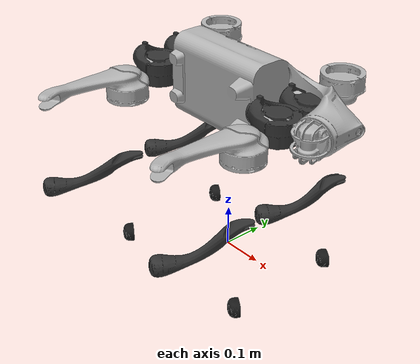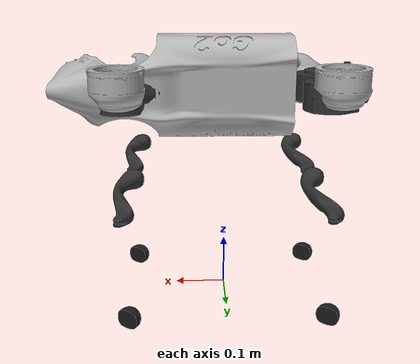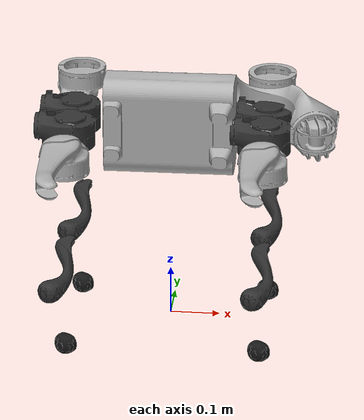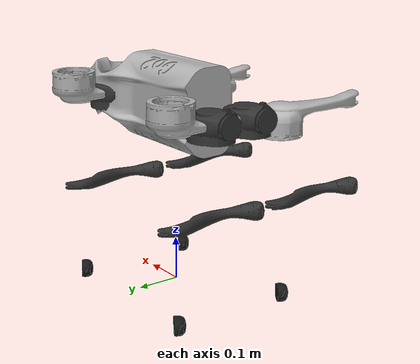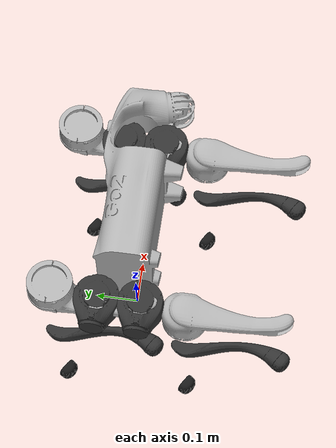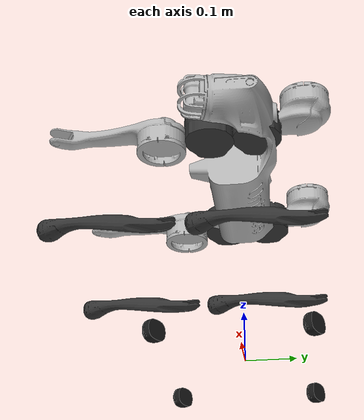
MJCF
<mujoco model="go2">
  <compiler angle="radian" meshdir="meshes/"/>

  <statistic meansize="0.144785" extent="1.23314" center="0.025392 2.0634e-05 -0.245975"/>

  <default>
    <joint damping="0.5" armature="0.01" frictionloss="0.1"/>
    <geom contype="1" conaffinity="1" condim="3"/>
    <site size="0.01" rgba="1 0 0 1" group="4"/>
  </default>

  <asset>
    <mesh name="base" file="base.stl"/>
    <mesh name="hip" file="hip.stl"/>
    <mesh name="thigh" file="thigh.stl"/>
    <mesh name="thigh_mirror" file="thigh_mirror.stl"/>
    <mesh name="calf" file="calf.stl"/>
    <mesh name="calf_mirror" file="calf_mirror.stl"/>
    <mesh name="foot" file="foot.stl"/>
  </asset>

  <worldbody>
    <light directional="true" diffuse=".8 .8 .8" specular=".2 .2 .2" pos="0 0 5" dir="0 0 -1"/>

    <body name="base" pos="0 0 0.42">
      <joint name="floating_base" type="free"/>
      <inertial pos="0 0 0" mass="5.0" diaginertia="0.01 0.01 0.01"/>
      <geom type="mesh" mesh="base" rgba="0.7 0.7 0.7 1"/>

      <site name="imu_site" pos="0 0 0"/>

      <body name="FL_hip" pos="0.1934 0.0465 0">
        <joint name="FL_hip_joint" axis="1 0 0" range="-1.0472 1.0472"/>
        <geom type="mesh" mesh="hip" rgba="0.2 0.2 0.2 1"/>
        <body name="FL_thigh" pos="0 0.0955 0">
          <joint name="FL_thigh_joint" axis="0 1 0" range="-1.5708 3.4907"/>
          <geom type="mesh" mesh="thigh" rgba="0.7 0.7 0.7 1"/>
          <body name="FL_calf" pos="0 0 -0.213">
            <joint name="FL_calf_joint" axis="0 1 0" range="-2.7227 -0.83776"/>
            <geom type="mesh" mesh="calf" rgba="0.2 0.2 0.2 1"/>
            <body name="FL_foot" pos="0 0 -0.213">
                <geom type="mesh" mesh="foot" rgba="0.1 0.1 0.1 1"/>
                <site name="FL_foot_site" pos="0 0 0"/>
            </body>
          </body>
        </body>
      </body>

      <body name="FR_hip" pos="0.1934 -0.0465 0">
        <joint name="FR_hip_joint" axis="1 0 0" range="-1.0472 1.0472"/>
        <geom type="mesh" mesh="hip" rgba="0.2 0.2 0.2 1"/>
        <body name="FR_thigh" pos="0 -0.0955 0">
          <joint name="FR_thigh_joint" axis="0 1 0" range="-1.5708 3.4907"/>
          <geom type="mesh" mesh="thigh_mirror" rgba="0.7 0.7 0.7 1"/>
          <body name="FR_calf" pos="0 0 -0.213">
            <joint name="FR_calf_joint" axis="0 1 0" range="-2.7227 -0.83776"/>
            <geom type="mesh" mesh="calf_mirror" rgba="0.2 0.2 0.2 1"/>
            <body name="FR_foot" pos="0 0 -0.213">
                <geom type="mesh" mesh="foot" rgba="0.1 0.1 0.1 1"/>
                <site name="FR_foot_site" pos="0 0 0"/>
            </body>
          </body>
        </body>
      </body>

      <body name="RL_hip" pos="-0.1934 0.0465 0">
        <joint name="RL_hip_joint" axis="1 0 0" range="-1.0472 1.0472"/>
        <geom type="mesh" mesh="hip" rgba="0.2 0.2 0.2 1"/>
        <body name="RL_thigh" pos="0 0.0955 0">
          <joint name="RL_thigh_joint" axis="0 1 0" range="-0.5236 4.5379"/>
          <geom type="mesh" mesh="thigh" rgba="0.7 0.7 0.7 1"/>
          <body name="RL_calf" pos="0 0 -0.213">
            <joint name="RL_calf_joint" axis="0 1 0" range="-2.7227 -0.83776"/>
            <geom type="mesh" mesh="calf" rgba="0.2 0.2 0.2 1"/>
            <body name="RL_foot" pos="0 0 -0.213">
                <geom type="mesh" mesh="foot" rgba="0.1 0.1 0.1 1"/>
                <site name="RL_foot_site" pos="0 0 0"/>
            </body>
          </body>
        </body>
      </body>

      <body name="RR_hip" pos="-0.1934 -0.0465 0">
        <joint name="RR_hip_joint" axis="1 0 0" range="-1.0472 1.0472"/>
        <geom type="mesh" mesh="hip" rgba="0.2 0.2 0.2 1"/>
        <body name="RR_thigh" pos="0 -0.0955 0">
          <joint name="RR_thigh_joint" axis="0 1 0" range="-0.5236 4.5379"/>
          <geom type="mesh" mesh="thigh_mirror" rgba="0.7 0.7 0.7 1"/>
          <body name="RR_calf" pos="0 0 -0.213">
            <joint name="RR_calf_joint" axis="0 1 0" range="-2.7227 -0.83776"/>
            <geom type="mesh" mesh="calf_mirror" rgba="0.2 0.2 0.2 1"/>
            <body name="RR_foot" pos="0 0 -0.213">
                <geom type="mesh" mesh="foot" rgba="0.1 0.1 0.1 1"/>
                <site name="RR_foot_site" pos="0 0 0"/>
            </body>
          </body>
        </body>
      </body>
    </body>
  </worldbody>

  <actuator>
    <motor name="FL_hip_motor" joint="FL_hip_joint" ctrlrange="-23.7 23.7"/>
    <motor name="FL_thigh_motor" joint="FL_thigh_joint" ctrlrange="-23.7 23.7"/>
    <motor name="FL_calf_motor" joint="FL_calf_joint" ctrlrange="-45.43 45.43"/>

    <motor name="FR_hip_motor" joint="FR_hip_joint" ctrlrange="-23.7 23.7"/>
    <motor name="FR_thigh_motor" joint="FR_thigh_joint" ctrlrange="-23.7 23.7"/>
    <motor name="FR_calf_motor" joint="FR_calf_joint" ctrlrange="-45.43 45.43"/>

    <motor name="RL_hip_motor" joint="RL_hip_joint" ctrlrange="-23.7 23.7"/>
    <motor name="RL_thigh_motor" joint="RL_thigh_joint" gear="1" ctrlrange="-23.7 23.7"/>
    <motor name="RL_calf_motor" joint="RL_calf_joint" gear="1" ctrlrange="-45.43 45.43"/>

    <motor name="RR_hip_motor" joint="RR_hip_joint" gear="1" ctrlrange="-23.7 23.7"/>
    <motor name="RR_thigh_motor" joint="RR_thigh_joint" gear="1" ctrlrange="-23.7 23.7"/>
    <motor name="RR_calf_motor" joint="RR_calf_joint" gear="1" ctrlrange="-45.43 45.43"/>
  </actuator>

  <sensor>
    <velocimeter name="base_lin_vel" site="imu_site"/>
    <gyro name="base_ang_vel" site="imu_site"/>
    <framequat name="base_quat" objtype="site" objname="imu_site"/>
  </sensor>
</mujoco>
